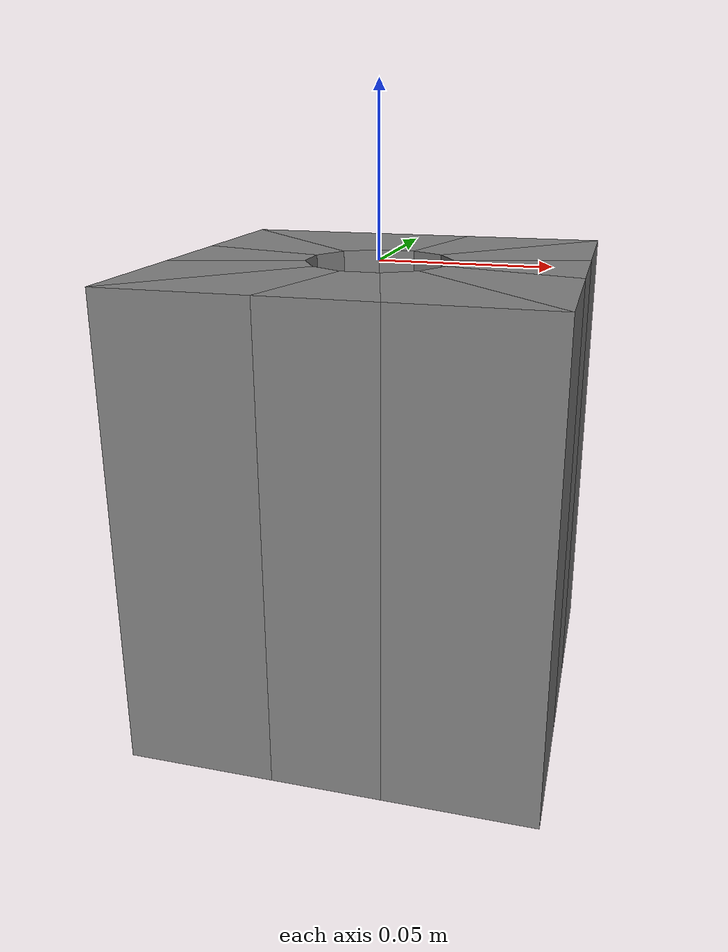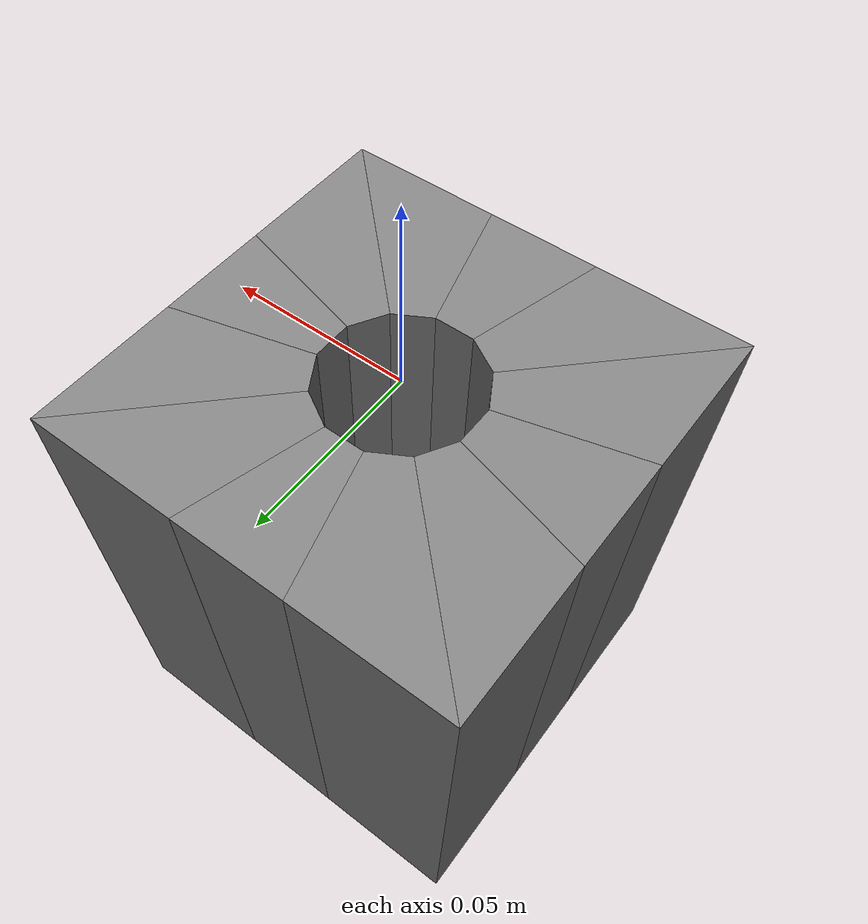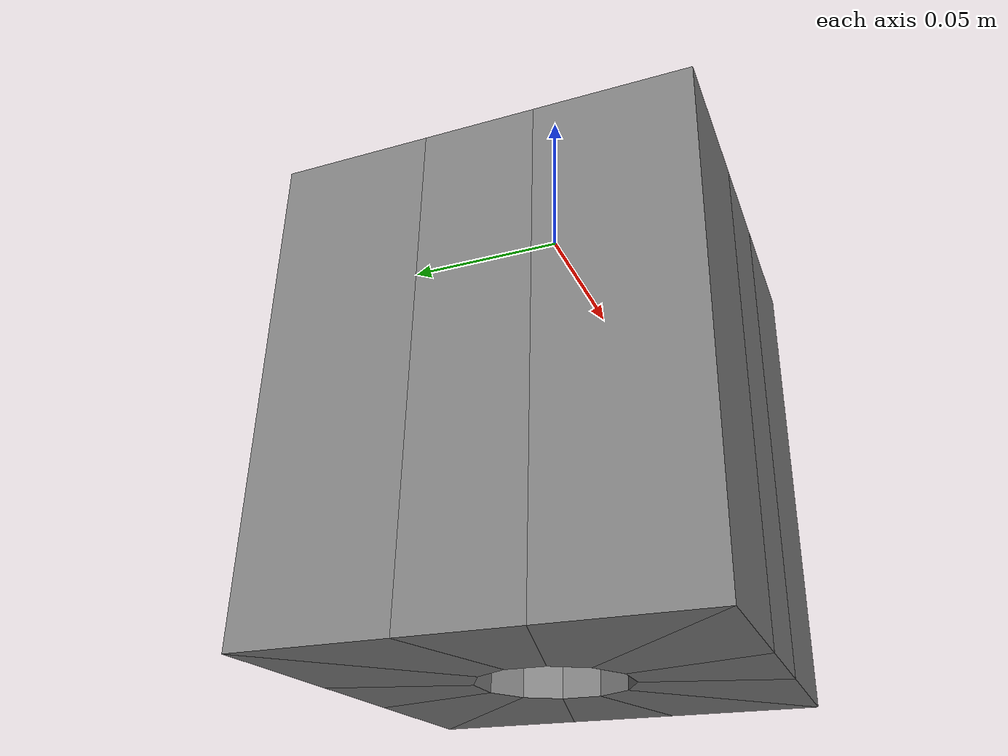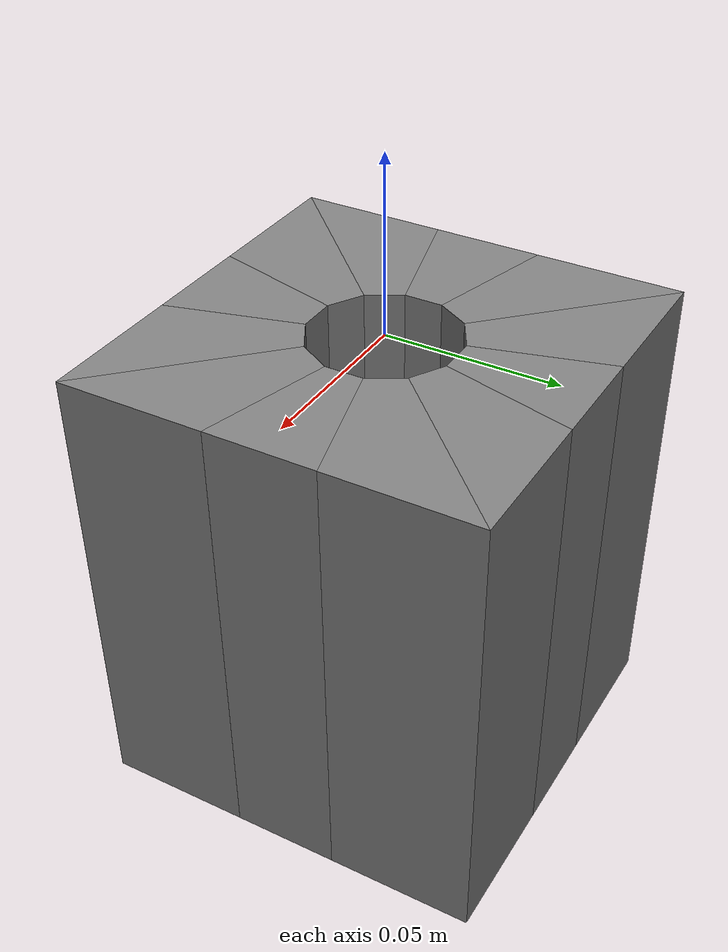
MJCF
<mujoco model="hole">
  <default>
    <default class="collision">
      <geom group="0" type="mesh" solimp="0.9 0.95 0.001 0.5 2" density="100000" solref=".004 1" condim="6"/>
    </default>
  </default>
  <asset>
    <texture file="../textures/red-wood.png" type="cube" name="red-wood" />
    <material name="plate_mat" texture="red-wood" texrepeat="3 3" specular="0.4" shininess="0.1" />
    <mesh file="meshes/guriguri-large-round-hole/Body11.stl" name="hole_collision_11"/>
    <mesh file="meshes/guriguri-large-round-hole/Body12.stl" name="hole_collision_12"/>
    <mesh file="meshes/guriguri-large-round-hole/Body13.stl" name="hole_collision_13"/>
    <mesh file="meshes/guriguri-large-round-hole/Body14.stl" name="hole_collision_14"/>
    <mesh file="meshes/guriguri-large-round-hole/Body15.stl" name="hole_collision_15"/>
    <mesh file="meshes/guriguri-large-round-hole/Body16.stl" name="hole_collision_16"/>
    <mesh file="meshes/guriguri-large-round-hole/Body17.stl" name="hole_collision_17"/>
    <mesh file="meshes/guriguri-large-round-hole/Body18.stl" name="hole_collision_18"/>
    <mesh file="meshes/guriguri-large-round-hole/Body19.stl" name="hole_collision_19"/>
    <mesh file="meshes/guriguri-large-round-hole/Body20.stl" name="hole_collision_20"/>
    <mesh file="meshes/guriguri-large-round-hole/Body21.stl" name="hole_collision_21"/>
    <mesh file="meshes/guriguri-large-round-hole/Body22.stl" name="hole_collision_22"/>
  </asset>
  <worldbody>
    <body>
      <body name="object" pos="0 0 0">
        <geom mesh="hole_collision_11" class="collision" />
        <geom mesh="hole_collision_12" class="collision" />
        <geom mesh="hole_collision_13" class="collision" />
        <geom mesh="hole_collision_14" class="collision" />
        <geom mesh="hole_collision_15" class="collision" />
        <geom mesh="hole_collision_16" class="collision" />
        <geom mesh="hole_collision_17" class="collision" />
        <geom mesh="hole_collision_18" class="collision" />
        <geom mesh="hole_collision_19" class="collision" />
        <geom mesh="hole_collision_20" class="collision" />
        <geom mesh="hole_collision_21" class="collision" />
        <geom mesh="hole_collision_22" class="collision" />
      </body>
      <site rgba="0 0 0 0" size="0.005" pos="0 0 -0.14" name="bottom_site" />
      <site rgba="0 0 0 0" size="0.005" pos="0 0 0.00" name="top_site" />
      <site rgba="0 0 0 0" size="0.005" pos="0.06 0.06 0" name="horizontal_radius_site" />

    </body>
  </worldbody>
</mujoco>
